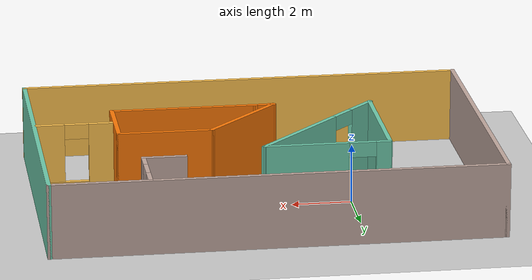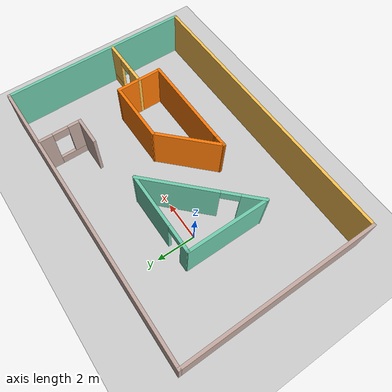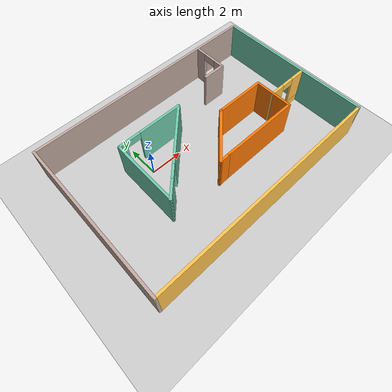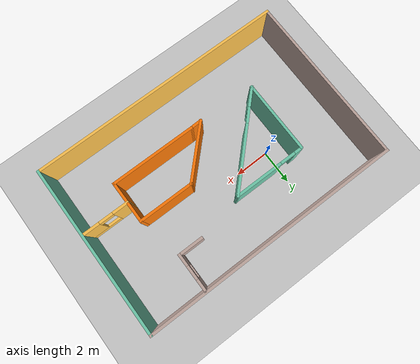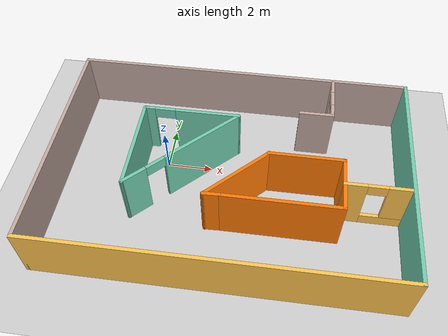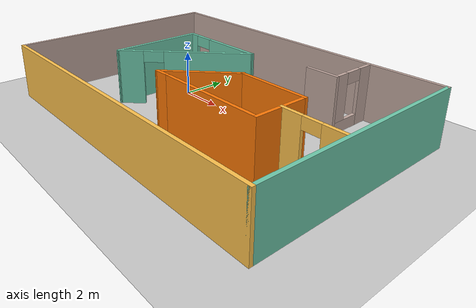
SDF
<sdf version="1.6">
 <world name="default">
  <light name="sun" type="directional">
   <pose>0 0 10 0 -0 0</pose>
   <diffuse>0.8 0.8 0.8 1</diffuse>
   <specular>0.2 0.2 0.2 1</specular>
   <attenuation>
    <range>1000</range>
    <constant>0.9</constant>
    <linear>0.01</linear>
    <quadratic>0.001</quadratic>
   </attenuation>
   <direction>-0.5 0.1 -0.9</direction>
  </light>
  <model name="ground_plane">
   <static>1</static>
   <link name="link">
    <collision name="collision">
     <geometry><plane><normal>0 0 1</normal><size>100 100</size></plane></geometry>
     <surface>
      <contact><collide_bitmask>65535</collide_bitmask></contact>
      <friction><ode><mu>100</mu><mu2>50</mu2></ode></friction>
     </surface>
    </collision>
    <visual name="visual">
     <cast_shadows>0</cast_shadows>
     <geometry><plane><normal>0 0 1</normal><size>100 100</size></plane></geometry>
     <material>
      <script><uri>file://media/materials/scripts/gazebo.material</uri><name>Gazebo/Grey</name></script>
     </material>
    </visual>
   </link>
  </model>
  <gravity>0 0 -9.8</gravity>
  <magnetic_field>6e-06 2.3e-05 -4.2e-05</magnetic_field>
  <atmosphere type="adiabatic"/>
  <physics name="default_physics" default="0" type="ode">
   <max_step_size>0.001</max_step_size>
   <real_time_factor>1</real_time_factor>
   <real_time_update_rate>1000</real_time_update_rate>
  </physics>
  <scene><ambient>0.4 0.4 0.4 1</ambient><background>0.7 0.7 0.7 1</background><shadows>1</shadows></scene>
  <spherical_coordinates>
   <surface_model>EARTH_WGS84</surface_model>
   <latitude_deg>0</latitude_deg>
   <longitude_deg>0</longitude_deg>
   <elevation>0</elevation>
   <heading_deg>0</heading_deg>
  </spherical_coordinates>
  <model name="building-1">
   <pose>2.93721 -1.02857 0 0 -0 0</pose>
   <link name="Wall_10">
    <collision name="Wall_10_Collision">
     <geometry><box><size>10 0.15 2.5</size></box></geometry>
     <pose>0 0 1.25 0 -0 0</pose>
    </collision>
    <visual name="Wall_10_Visual">
     <pose>0 0 1.25 0 -0 0</pose>
     <geometry><box><size>10 0.15 2.5</size></box></geometry>
     <material>
      <script><uri>file://media/materials/scripts/gazebo.material</uri><name>Gazebo/Grey</name></script>
      <ambient>0.760784 0.662745 0.627451 1</ambient>
     </material>
     <meta><layer>0</layer></meta>
    </visual>
    <pose>-7.425 0 0 0 0 -1.5708</pose>
   </link>
   <link name="Wall_12">
    <collision name="Wall_12_Collision">
     <geometry><box><size>15 0.15 2.5</size></box></geometry>
     <pose>0 0 1.25 0 -0 0</pose>
    </collision>
    <visual name="Wall_12_Visual">
     <pose>0 0 1.25 0 -0 0</pose>
     <geometry><box><size>15 0.15 2.5</size></box></geometry>
     <material>
      <script><uri>file://media/materials/scripts/gazebo.material</uri><name>Gazebo/Grey</name></script>
      <ambient>1 0.764706 0.305882 1</ambient>
     </material>
     <meta><layer>0</layer></meta>
    </visual>
    <pose>0 -4.925 0 0 -0 0</pose>
   </link>
   <link name="Wall_14">
    <collision name="Wall_14_Collision">
     <geometry><box><size>4.25 0.15 2.5</size></box></geometry>
     <pose>0 0 1.25 0 -0 0</pose>
    </collision>
    <visual name="Wall_14_Visual">
     <pose>0 0 1.25 0 -0 0</pose>
     <geometry><box><size>4.25 0.15 2.5</size></box></geometry>
     <material>
      <script><uri>file://media/materials/scripts/gazebo.material</uri><name>Gazebo/Grey</name></script>
      <ambient>0.435294 0.796078 0.67451 1</ambient>
     </material>
     <meta><layer>0</layer></meta>
    </visual>
    <pose>-4.02449 0.086319 0 0 0 -1.5708</pose>
   </link>
   <link name="Wall_15">
    <pose>-1.9562 0.104606 0 0 -0 0.785398</pose>
    <visual name="Wall_15_Visual_0">
     <pose>-2.40696 0 1.25 0 -0 0</pose>
     <geometry><box><size>1.18607 0.15 2.5</size></box></geometry>
     <material>
      <script><uri>file://media/materials/scripts/gazebo.material</uri><name>Gazebo/Grey</name></script>
      <ambient>0.435294 0.796078 0.67451 1</ambient>
     </material>
     <meta><layer>0</layer></meta>
    </visual>
    <collision name="Wall_15_Collision_0">
     <geometry><box><size>1.18607 0.15 2.5</size></box></geometry>
     <pose>-2.40696 0 1.25 0 -0 0</pose>
    </collision>
    <visual name="Wall_15_Visual_1">
     <pose>1.04304 0 1.25 0 -0 0</pose>
     <geometry><box><size>3.91393 0.15 2.5</size></box></geometry>
     <material>
      <script><uri>file://media/materials/scripts/gazebo.material</uri><name>Gazebo/Grey</name></script>
      <ambient>0.435294 0.796078 0.67451 1</ambient>
     </material>
     <meta><layer>0</layer></meta>
    </visual>
    <collision name="Wall_15_Collision_1">
     <geometry><box><size>3.91393 0.15 2.5</size></box></geometry>
     <pose>1.04304 0 1.25 0 -0 0</pose>
    </collision>
    <visual name="Wall_15_Visual_2">
     <pose>-1.36393 0 2.25 0 -0 0</pose>
     <geometry><box><size>0.9 0.15 0.5</size></box></geometry>
     <material>
      <script><uri>file://media/materials/scripts/gazebo.material</uri><name>Gazebo/Grey</name></script>
      <ambient>0.435294 0.796078 0.67451 1</ambient>
     </material>
     <meta><layer>0</layer></meta>
    </visual>
    <collision name="Wall_15_Collision_2">
     <geometry><box><size>0.9 0.15 0.5</size></box></geometry>
     <pose>-1.36393 0 2.25 0 -0 0</pose>
    </collision>
   </link>
   <link name="Wall_16">
    <pose>-1.93791 2.17289 0 0 -0 3.14159</pose>
    <visual name="Wall_16_Visual_0">
     <pose>-0.699501 0 1.25 0 -0 0</pose>
     <geometry><box><size>2.851 0.15 2.5</size></box></geometry>
     <material>
      <script><uri>file://media/materials/scripts/gazebo.material</uri><name>Gazebo/Grey</name></script>
      <ambient>0.435294 0.796078 0.67451 1</ambient>
     </material>
     <meta><layer>0</layer></meta>
    </visual>
    <collision name="Wall_16_Collision_0">
     <geometry><box><size>2.851 0.15 2.5</size></box></geometry>
     <pose>-0.699501 0 1.25 0 -0 0</pose>
    </collision>
    <visual name="Wall_16_Visual_1">
     <pose>1.8755 0 1.25 0 -0 0</pose>
     <geometry><box><size>0.499003 0.15 2.5</size></box></geometry>
     <material>
      <script><uri>file://media/materials/scripts/gazebo.material</uri><name>Gazebo/Grey</name></script>
      <ambient>0.435294 0.796078 0.67451 1</ambient>
     </material>
     <meta><layer>0</layer></meta>
    </visual>
    <collision name="Wall_16_Collision_1">
     <geometry><box><size>0.499003 0.15 2.5</size></box></geometry>
     <pose>1.8755 0 1.25 0 -0 0</pose>
    </collision>
    <visual name="Wall_16_Visual_2">
     <pose>1.176 0 2.25 0 -0 0</pose>
     <geometry><box><size>0.9 0.15 0.5</size></box></geometry>
     <material>
      <script><uri>file://media/materials/scripts/gazebo.material</uri><name>Gazebo/Grey</name></script>
      <ambient>0.435294 0.796078 0.67451 1</ambient>
     </material>
     <meta><layer>0</layer></meta>
    </visual>
    <collision name="Wall_16_Collision_2">
     <geometry><box><size>0.9 0.15 0.5</size></box></geometry>
     <pose>1.176 0 2.25 0 -0 0</pose>
    </collision>
   </link>
   <link name="Wall_18">
    <collision name="Wall_18_Collision">
     <geometry><box><size>5 0.15 2.5</size></box></geometry>
     <pose>0 0 1.25 0 -0 0</pose>
    </collision>
    <visual name="Wall_18_Visual">
     <pose>0 0 1.25 0 -0 0</pose>
     <geometry><box><size>5 0.15 2.5</size></box></geometry>
     <material>
      <script><uri>file://media/materials/scripts/gazebo.material</uri><name>Gazebo/Grey</name></script>
      <ambient>0.996078 0.47451 0.0196078 1</ambient>
     </material>
     <meta><layer>0</layer></meta>
    </visual>
    <pose>2.28843 -2.09466 0 0 -0 0</pose>
   </link>
   <link name="Wall_19">
    <collision name="Wall_19_Collision">
     <geometry><box><size>2.5 0.15 2.5</size></box></geometry>
     <pose>0 0 1.25 0 -0 0</pose>
    </collision>
    <visual name="Wall_19_Visual">
     <pose>0 0 1.25 0 -0 0</pose>
     <geometry><box><size>2.5 0.15 2.5</size></box></geometry>
     <material>
      <script><uri>file://media/materials/scripts/gazebo.material</uri><name>Gazebo/Grey</name></script>
      <ambient>0.996078 0.47451 0.0196078 1</ambient>
     </material>
     <meta><layer>0</layer></meta>
    </visual>
    <pose>4.71343 -0.919655 0 0 -0 1.5708</pose>
   </link>
   <link name="Wall_20">
    <collision name="Wall_20_Collision">
     <geometry><box><size>3.25 0.15 2.5</size></box></geometry>
     <pose>0 0 1.25 0 -0 0</pose>
    </collision>
    <visual name="Wall_20_Visual">
     <pose>0 0 1.25 0 -0 0</pose>
     <geometry><box><size>3.25 0.15 2.5</size></box></geometry>
     <material>
      <script><uri>file://media/materials/scripts/gazebo.material</uri><name>Gazebo/Grey</name></script>
      <ambient>0.996078 0.47451 0.0196078 1</ambient>
     </material>
     <meta><layer>0</layer></meta>
    </visual>
    <pose>3.16343 0.255345 0 0 -0 3.14159</pose>
   </link>
   <link name="Wall_21">
    <collision name="Wall_21_Collision">
     <geometry><box><size>3.5 0.15 2.5</size></box></geometry>
     <pose>0 0 1.25 0 -0 0</pose>
    </collision>
    <visual name="Wall_21_Visual">
     <pose>0 0 1.25 0 -0 0</pose>
     <geometry><box><size>3.5 0.15 2.5</size></box></geometry>
     <material>
      <script><uri>file://media/materials/scripts/gazebo.material</uri><name>Gazebo/Grey</name></script>
      <ambient>0.996078 0.47451 0.0196078 1</ambient>
     </material>
     <meta><layer>0</layer></meta>
    </visual>
    <pose>0.42903 -0.929059 0 0 0 -2.35619</pose>
   </link>
   <link name="Wall_22">
    <collision name="Wall_22_Collision">
     <geometry><box><size>0.769093 0.15 2.5</size></box></geometry>
     <pose>0 0 1.25 0 -0 0</pose>
    </collision>
    <visual name="Wall_22_Visual">
     <pose>0 0 1.25 0 -0 0</pose>
     <geometry><box><size>0.769093 0.15 2.5</size></box></geometry>
     <material>
      <script><uri>file://media/materials/scripts/gazebo.material</uri><name>Gazebo/Grey</name></script>
      <ambient>0.996078 0.47451 0.0196078 1</ambient>
     </material>
     <meta><layer>0</layer></meta>
    </visual>
    <pose>-0.44597 -2.10406 0 0 -0 0.030384</pose>
   </link>
   <link name="Wall_24">
    <pose>4.16302 3.78499 0 0 0 -1.5708</pose>
    <visual name="Wall_24_Visual_0">
     <pose>-0.762265 0 1.25 0 -0 0</pose>
     <geometry><box><size>0.72547 0.15 2.5</size></box></geometry>
     <material>
      <script><uri>file://media/materials/scripts/gazebo.material</uri><name>Gazebo/Grey</name></script>
      <ambient>0.760784 0.662745 0.627451 1</ambient>
     </material>
     <meta><layer>0</layer></meta>
    </visual>
    <collision name="Wall_24_Collision_0">
     <geometry><box><size>0.72547 0.15 2.5</size></box></geometry>
     <pose>-0.762265 0 1.25 0 -0 0</pose>
    </collision>
    <visual name="Wall_24_Visual_1">
     <pose>0.362735 0 0.25 0 -0 0</pose>
     <geometry><box><size>1.52453 0.15 0.5</size></box></geometry>
     <material>
      <script><uri>file://media/materials/scripts/gazebo.material</uri><name>Gazebo/Grey</name></script>
      <ambient>0.760784 0.662745 0.627451 1</ambient>
     </material>
     <meta><layer>0</layer></meta>
    </visual>
    <collision name="Wall_24_Collision_1">
     <geometry><box><size>1.52453 0.15 0.5</size></box></geometry>
     <pose>0.362735 0 0.25 0 -0 0</pose>
    </collision>
    <visual name="Wall_24_Visual_2">
     <pose>0.762735 0 1.5 0 -0 0</pose>
     <geometry><box><size>0.72453 0.15 2</size></box></geometry>
     <material>
      <script><uri>file://media/materials/scripts/gazebo.material</uri><name>Gazebo/Grey</name></script>
      <ambient>0.760784 0.662745 0.627451 1</ambient>
     </material>
     <meta><layer>0</layer></meta>
    </visual>
    <collision name="Wall_24_Collision_2">
     <geometry><box><size>0.72453 0.15 2</size></box></geometry>
     <pose>0.762735 0 1.5 0 -0 0</pose>
    </collision>
    <visual name="Wall_24_Visual_3">
     <pose>0.00047 0 2.25 0 -0 0</pose>
     <geometry><box><size>0.8 0.15 0.5</size></box></geometry>
     <material>
      <script><uri>file://media/materials/scripts/gazebo.material</uri><name>Gazebo/Grey</name></script>
      <ambient>0.760784 0.662745 0.627451 1</ambient>
     </material>
     <meta><layer>0</layer></meta>
    </visual>
    <collision name="Wall_24_Collision_3">
     <geometry><box><size>0.8 0.15 0.5</size></box></geometry>
     <pose>0.00047 0 2.25 0 -0 0</pose>
    </collision>
   </link>
   <link name="Wall_25">
    <collision name="Wall_25_Collision">
     <geometry><box><size>1.5 0.15 2.5</size></box></geometry>
     <pose>0 0 1.25 0 -0 0</pose>
    </collision>
    <visual name="Wall_25_Visual">
     <pose>0 0 1.25 0 -0 0</pose>
     <geometry><box><size>1.5 0.15 2.5</size></box></geometry>
     <material>
      <script><uri>file://media/materials/scripts/gazebo.material</uri><name>Gazebo/Grey</name></script>
      <ambient>0.760784 0.662745 0.627451 1</ambient>
     </material>
     <meta><layer>0</layer></meta>
    </visual>
    <pose>3.48802 2.73499 0 0 -0 3.14159</pose>
   </link>
   <link name="Wall_27">
    <pose>6.0119 -0.905409 0 0 -0 0</pose>
    <visual name="Wall_27_Visual_0">
     <pose>-0.887616 0 1.25 0 -0 0</pose>
     <geometry><box><size>0.974768 0.15 2.5</size></box></geometry>
     <material>
      <script><uri>file://media/materials/scripts/gazebo.material</uri><name>Gazebo/Grey</name></script>
      <ambient>1 0.764706 0.305882 1</ambient>
     </material>
     <meta><layer>0</layer></meta>
    </visual>
    <collision name="Wall_27_Collision_0">
     <geometry><box><size>0.974768 0.15 2.5</size></box></geometry>
     <pose>-0.887616 0 1.25 0 -0 0</pose>
    </collision>
    <visual name="Wall_27_Visual_1">
     <pose>0.487384 0 0.25 0 -0 0</pose>
     <geometry><box><size>1.77523 0.15 0.5</size></box></geometry>
     <material>
      <script><uri>file://media/materials/scripts/gazebo.material</uri><name>Gazebo/Grey</name></script>
      <ambient>1 0.764706 0.305882 1</ambient>
     </material>
     <meta><layer>0</layer></meta>
    </visual>
    <collision name="Wall_27_Collision_1">
     <geometry><box><size>1.77523 0.15 0.5</size></box></geometry>
     <pose>0.487384 0 0.25 0 -0 0</pose>
    </collision>
    <visual name="Wall_27_Visual_2">
     <pose>0.887384 0 1.5 0 -0 0</pose>
     <geometry><box><size>0.975232 0.15 2</size></box></geometry>
     <material>
      <script><uri>file://media/materials/scripts/gazebo.material</uri><name>Gazebo/Grey</name></script>
      <ambient>1 0.764706 0.305882 1</ambient>
     </material>
     <meta><layer>0</layer></meta>
    </visual>
    <collision name="Wall_27_Collision_2">
     <geometry><box><size>0.975232 0.15 2</size></box></geometry>
     <pose>0.887384 0 1.5 0 -0 0</pose>
    </collision>
    <visual name="Wall_27_Visual_3">
     <pose>-0.000232 0 2.25 0 -0 0</pose>
     <geometry><box><size>0.8 0.15 0.5</size></box></geometry>
     <material>
      <script><uri>file://media/materials/scripts/gazebo.material</uri><name>Gazebo/Grey</name></script>
      <ambient>1 0.764706 0.305882 1</ambient>
     </material>
     <meta><layer>0</layer></meta>
    </visual>
    <collision name="Wall_27_Collision_3">
     <geometry><box><size>0.8 0.15 0.5</size></box></geometry>
     <pose>-0.000232 0 2.25 0 -0 0</pose>
    </collision>
   </link>
   <link name="Wall_6">
    <collision name="Wall_6_Collision">
     <geometry><box><size>15 0.15 2.5</size></box></geometry>
     <pose>0 0 1.25 0 -0 0</pose>
    </collision>
    <visual name="Wall_6_Visual">
     <pose>0 0 1.25 0 -0 0</pose>
     <geometry><box><size>15 0.15 2.5</size></box></geometry>
     <material>
      <script><uri>file://media/materials/scripts/gazebo.material</uri><name>Gazebo/Grey</name></script>
      <ambient>0.760784 0.662745 0.627451 1</ambient>
     </material>
     <meta><layer>0</layer></meta>
    </visual>
    <pose>0 4.925 0 0 -0 0</pose>
   </link>
   <link name="Wall_8">
    <collision name="Wall_8_Collision">
     <geometry><box><size>10 0.15 2.5</size></box></geometry>
     <pose>0 0 1.25 0 -0 0</pose>
    </collision>
    <visual name="Wall_8_Visual">
     <pose>0 0 1.25 0 -0 0</pose>
     <geometry><box><size>10 0.15 2.5</size></box></geometry>
     <material>
      <script><uri>file://media/materials/scripts/gazebo.material</uri><name>Gazebo/Grey</name></script>
      <ambient>0.435294 0.796078 0.67451 1</ambient>
     </material>
     <meta><layer>0</layer></meta>
    </visual>
    <pose>7.425 0 0 0 0 -1.5708</pose>
   </link>
   <static>1</static>
  </model>
  <plugin filename="libcollision_map_creator.so" name="collision_map_creator"/>
 </world>
</sdf>
